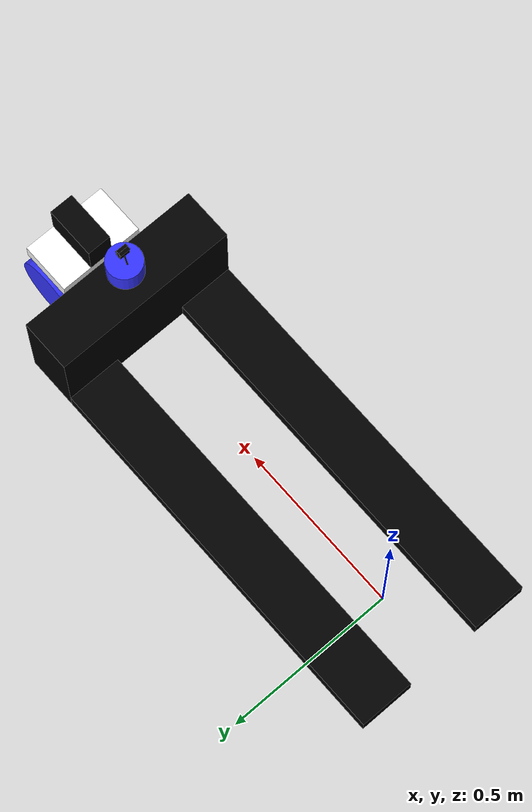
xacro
<?xml version="1.0"?>
<robot xmlns:xacro="http://www.ros.org/wiki/xacro"  name="robot">

    <xacro:include filename="robot_core_humble.xacro" />

    <xacro:include filename="ros2_control.xacro" />

    <xacro:include filename="lidar.xacro"/>

    <xacro:include filename="camera.xacro" />

</robot>

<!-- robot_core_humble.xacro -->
<robot xmlns:xacro="http://www.ros.org/wiki/xacro">

  <xacro:include filename="inertial_macros.xacro"/>

  <!-- Materials -->
  <material name="white">
    <color rgba="1 1 1 1" />
  </material>
  <material name="orange">
    <color rgba="1 0.3 0.1 1"/>
  </material>
  <material name="blue">
    <color rgba="0.2 0.2 1 1"/>
  </material>
  <material name="black">
    <color rgba="0 0 0 1"/>
  </material>

  <!-- Base Link -->
  <link name="base_link"/>

  <!-- Base Footprint -->
  <joint name="base_footprint_joint" type="fixed">
    <parent link="base_link"/>
    <child link="base_footprint"/>
    <origin xyz="0 0 0" rpy="0 0 0"/>
  </joint>
  <link name="base_footprint"/>

  <!-- Base Plate -->
  <joint name="base_plate_joint" type="fixed">
    <parent link="base_link"/>
    <child link="base_plate"/>
    <origin xyz="1.17 0 0.25"/>
  </joint>
  <link name="base_plate">
    <visual>
      <origin xyz="0 0 0"/>
      <geometry>
        <box size="0.15 0.25 0.05"/>
      </geometry>
      <material name="white"/>
    </visual>
    <collision>
      <origin xyz="0 0 0"/>
      <geometry>
        <box size="0.15 0.25 0.05"/>
      </geometry>
    </collision>
    <xacro:inertial_box mass="2" x="0.15" y="0.25" z="0.05">
      <origin xyz="0 0 0" rpy="0 0 0"/>
    </xacro:inertial_box>
  </link>

  <!-- Steering Shaft -->
  <joint name="steering_shaft_joint" type="revolute">
    <parent link="base_plate"/>
    <child link="steering_shaft"/>
    <origin xyz="0 0 -0.025" rpy="0 0 0"/>
    <axis xyz="0 0 1"/>
    <dynamics damping="1.1" friction="0.5"/>
    <limit lower="${-pi/2}" upper="${pi/2}" effort="1000" velocity="${2*pi}"/>
  </joint>
  <link name="steering_shaft">
    <visual>
      <origin xyz="0 0 -0.0625"/>
      <geometry>
        <cylinder radius="0.025" length="0.125"/>
      </geometry>
      <material name="blue"/>
    </visual>
    <xacro:inertial_cylinder mass="0.5" length="0.125" radius="0.025">
      <origin xyz="0 0 0" rpy="0 0 0"/>
    </xacro:inertial_cylinder>
  </link>

  <!-- Steering Wheel Right -->
  <joint name="steering_wheel_right_joint" type="continuous">
    <parent link="steering_shaft"/>
    <child link="steering_wheel_right"/>
    <!-- Switched X origin and flipped Y origin -->
    <origin xyz="0 -0.11 -0.125" rpy="${pi/2} 0 0"/>
    <axis xyz="0 0 -1"/>
    <dynamics damping="0.01" friction="0.01"/>
  </joint>
  <link name="steering_wheel_right">
    <visual>
      <geometry>
        <cylinder radius="0.1" length="0.04"/>
      </geometry>
      <material name="blue"/>
    </visual>
    <collision>
      <geometry>
        <sphere radius="0.1"/>
      </geometry>
    </collision>
    <xacro:inertial_cylinder mass="1.5" length="0.04" radius="0.1">
      <origin xyz="0 0 0" rpy="0 0 0"/>
    </xacro:inertial_cylinder>
  </link>

  <!-- Steering Wheel Left -->
  <joint name="steering_wheel_left_joint" type="continuous">
    <parent link="steering_shaft"/>
    <child link="steering_wheel_left"/>
    <!-- Switched X origin and flipped Y origin -->
    <origin xyz="0 0.11 -0.125" rpy="${pi/2} 0 0"/>
    <axis xyz="0 0 -1"/>
    <dynamics damping="0.01" friction="0.01"/>
  </joint>
  <link name="steering_wheel_left">
    <visual>
      <geometry>
        <cylinder radius="0.1" length="0.04"/>
      </geometry>
      <material name="blue"/>
    </visual>
    <collision>
      <geometry>
        <sphere radius="0.1"/>
      </geometry>
    </collision>
    <xacro:inertial_cylinder mass="1.5" length="0.04" radius="0.1">
      <origin xyz="0 0 0" rpy="0 0 0"/>
    </xacro:inertial_cylinder>
  </link>

  <!-- Linear Actuator -->
  <joint name="linear_actuator_joint" type="fixed">
    <parent link="base_plate"/>
    <child link="linear_actuator"/>
    <origin xyz="0 0 0.025"/>
    <axis xyz="0 0 1"/>
  </joint>
  <link name="linear_actuator">
    <visual>
      <origin xyz="0 0 0.05"/>
      <geometry>
        <box size="0.15 0.07 0.1"/>
      </geometry>
      <material name="black"/>
    </visual>
    <collision>
      <origin xyz="0 0 0.05"/>
      <geometry>
        <box size="0.15 0.07 0.1"/>
      </geometry>
    </collision>
    <xacro:inertial_box mass="1" x="0.15" y="0.07" z="0.1">
      <origin xyz="0 0 0.05" rpy="0 0 0"/>
    </xacro:inertial_box>
  </link>

  <!-- Frame Box -->
  <joint name="frame_box_joint" type="fixed">
    <parent link="linear_actuator"/>
    <child link="frame_box"/>
    <!-- Switched X origin and flipped Y origin -->
    <origin xyz="-0.18 0 -0.085" rpy="0 0 0"/>
    <dynamics damping="1.0" friction="1.0"/>
  </joint>
  <link name="frame_box">
    <visual>
      <geometry>
        <box size="0.15 0.54 0.3"/>
      </geometry>
      <material name="black"/>
    </visual>
    <collision>
      <geometry>
        <box size="0.15 0.54 0.3"/>
      </geometry>
    </collision>
    <xacro:inertial_box mass="20" x="0.15" y="0.54" z="0.3">
      <origin xyz="0 0 0" rpy="0 0 0"/>
    </xacro:inertial_box>
  </link>

  <!-- Left Fork -->
  <joint name="left_fork_joint" type="fixed">
    <parent link="frame_box"/>
    <child link="left_fork"/>
    <!-- Switched X origin and flipped Y origin -->
    <origin xyz="-0.075 0.19 -0.125" rpy="0 0 0"/>
  </joint>
  <link name="left_fork">
    <visual>
      <!-- Switched X origin -->
      <origin xyz="-0.57 0 0"/>
      <geometry>
        <box size="1.14 0.16 0.05"/>
      </geometry>
      <material name="black"/>
    </visual>
    <collision>
      <!-- Switched X origin -->
      <origin xyz="-0.57 0 0"/>
      <geometry>
        <box size="1.14 0.16 0.05"/>
      </geometry>
    </collision>
    <xacro:inertial_box mass="10" x="1.14" y="0.16" z="0.05">
      <origin xyz="-0.57 0 0" rpy="0 0 0"/>
    </xacro:inertial_box>
  </link>

  <!-- Right Fork -->
  <joint name="right_fork_joint" type="fixed">
    <parent link="frame_box"/>
    <child link="right_fork"/>
    <!-- Switched X origin and flipped Y origin -->
    <origin xyz="-0.075 -0.19 -0.125" rpy="0 0 0"/>
  </joint>
  <link name="right_fork">
    <visual>
      <!-- Switched X origin -->
      <origin xyz="-0.57 0 0"/>
      <geometry>
        <box size="1.14 0.16 0.05"/>
      </geometry>
      <material name="black"/>
    </visual>
    <collision>
      <!-- Switched X origin -->
      <origin xyz="-0.57 0 0"/>
      <geometry>
        <box size="1.14 0.16 0.05"/>
      </geometry>
    </collision>
    <xacro:inertial_box mass="10" x="1.14" y="0.16" z="0.05">
      <origin xyz="-0.57 0 0" rpy="0 0 0"/>
    </xacro:inertial_box>
  </link>

  <!-- Left Fork Actuator -->

    <!-- right Fork Actuator -->

  <!-- Fork Wheel Left -->
  <joint name="fork_wheel_left_joint" type="continuous">
    <parent link="base_plate"/>
    <child link="fork_wheel_left"/>
    <!-- Switched X origin and flipped Y origin -->
    <origin xyz="-1.17 0.19 -0.2175" rpy="${pi/2} 0 0"/>
    <axis xyz="0 0 1"/>
    <dynamics damping="0.1" friction="0.1"/>
  </joint>
  <link name="fork_wheel_left">
    <visual>
      <geometry>
        <cylinder radius="0.0325" length="0.07"/>
      </geometry>
      <material name="black"/>
    </visual>
    <collision>
      <geometry>
        <sphere radius="0.0325"/>
      </geometry>
    </collision>
    <xacro:inertial_cylinder mass="0.3" length="0.07" radius="0.0325">
      <origin xyz="0 0 0" rpy="0 0 0"/>
    </xacro:inertial_cylinder>
  </link>

  <!-- Fork Wheel Right -->
  <joint name="fork_wheel_right_joint" type="continuous">
    <parent link="base_plate"/>
    <child link="fork_wheel_right"/>
    <!-- Switched X origin and flipped Y origin -->
    <origin xyz="-1.17 -0.19 -0.2175" rpy="${pi/2} 0 0"/>
    <axis xyz="0 0 1"/>
    <dynamics damping="0.1" friction="0.1"/>
  </joint>
  <link name="fork_wheel_right">
    <visual>
      <geometry>
        <cylinder radius="0.0325" length="0.07"/>
      </geometry>
      <material name="black"/>
    </visual>
    <collision>
      <geometry>
        <sphere radius="0.0325"/>
      </geometry>
    </collision>
    <xacro:inertial_cylinder mass="0.3" length="0.07" radius="0.0325">
      <origin xyz="0 0 0" rpy="0 0 0"/>
    </xacro:inertial_cylinder>
  </link>

  <!-- Gazebo Material and Friction Parameters -->
  <gazebo reference="steering_wheel_right">
    <material>Gazebo/Blue</material>
    <mu1 value="0.9"/>
    <mu2 value="0.9"/>
  </gazebo>
  <gazebo reference="steering_wheel_left">
    <material>Gazebo/Red</material>
    <mu1 value="0.9"/>
    <mu2 value="0.9"/>
  </gazebo>
  <gazebo reference="fork_wheel_left">
    <material>Gazebo/Red</material>
    <mu1 value="0.9"/>
    <mu2 value="1.0"/>
  </gazebo>
  <gazebo reference="fork_wheel_right">
    <material>Gazebo/Blue</material>
    <mu1 value="0.9"/>
    <mu2 value="1.0"/>
  </gazebo>
  <gazebo reference="frame_box">
    <material>Gazebo/Red</material>
  </gazebo>

  <gazebo>

    <plugin name="gazebo_ros_joint_state_publisher"
        filename="libgazebo_ros_joint_state_publisher.so">
        <update_rate>100</update_rate>
        <joint_name>steering_wheel_right_joint</joint_name>
        <joint_name>steering_wheel_left_joint</joint_name>
        <joint_name>steering_shaft_joint</joint_name>
        <joint_name>fork_wheel_right_joint</joint_name>
        <joint_name>fork_wheel_left_joint</joint_name>
        <joint_name>linear_actuator_joint</joint_name>
    </plugin>
  </gazebo>
  <!-- Left Wheel Transmission -->
  <transmission name="steering_wheel_left_transmission">
    <type>transmission_interface/SimpleTransmission</type>
    <joint name="steering_wheel_left_joint"/>
    <actuator name="steering_wheel_left_motor">
        <mechanicalReduction>1</mechanicalReduction>
    </actuator>
  </transmission>

  <!-- Right Wheel Transmission -->
  <transmission name="steering_wheel_right_transmission">
    <type>transmission_interface/SimpleTransmission</type>
    <joint name="steering_wheel_right_joint"/>
    <actuator name="steering_wheel_right_motor">
        <mechanicalReduction>1</mechanicalReduction>
    </actuator>
  </transmission>

  <!-- Linear Actuator Transmission -->
  <transmission name="linear_actuator_transmission">
    <type>transmission_interface/SimpleTransmission</type>
    <joint name="linear_actuator_joint"/>
    <actuator name="linear_actuator_motor">
        <mechanicalReduction>1</mechanicalReduction>
    </actuator>
  </transmission>

</robot>

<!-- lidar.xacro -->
<robot xmlns:xacro="http://www.ros.org/wiki/xacro">

    <joint name="lidar_joint" type="fixed">
        <parent link="frame_box"/>
        <child link="lidar"/>
        <origin xyz="0 0 0.25"/>
    </joint>

    <link name="lidar">
    <visual>
            <origin xyz="0 0 0"/>
            <geometry>
                <cylinder radius="0.05" length="0.07"/>
            </geometry>
            <material name="blue"/>
        </visual>
        <xacro:inertial_cylinder mass="0.3" length="0.07" radius="0.05">
            <origin xyz="0 0 0" rpy="0 0 0"/>
        </xacro:inertial_cylinder>
    </link>

<!-- Add a simulated LiDAR sensor -->
  <gazebo reference="lidar">
    <material>Gazebo/Blue</material>
    <sensor name="lidar" type="ray">
    <visualize>false</visualize>
      <update_rate>50</update_rate>
      <ray>
        <scan>
          <horizontal>
            <samples>360</samples>
            <min_angle>-3.1415</min_angle>
            <max_angle>3.1415</max_angle>
          </horizontal>
          <vertical>
            <samples>16</samples>
            <min_angle>-0.261799</min_angle>
            <max_angle>0.261799</max_angle>
          </vertical>
        </scan>
        <range>
          <min>0.1</min>
          <max>100.0</max>
        </range>
      </ray>
      <plugin name="gazebo_ros" filename="libgazebo_ros_ray_sensor.so">

          <!-- Directly publish to the desired topic -->
          <ros>
            <argument>~/out:=CloudScan</argument>
          </ros>
          <output_type>sensor_msgs/PointCloud2</output_type>
          <frame_name>lidar</frame_name>

      </plugin>
    </sensor>
  </gazebo>

</robot>

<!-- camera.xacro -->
<robot xmlns:xacro="http://www.ros.org/wiki/xacro" >

    <joint name="camera_joint_forks" type="fixed">
        <parent link="lidar"/>
        <child link="camera_link_forks"/>
        <origin xyz="0 0 0.1" rpy="0 0.45 ${pi}"/>
    </joint>

    <joint name="camera_joint_steering" type="fixed">
        <parent link="lidar"/>
        <child link="camera_link_steering"/>
        <origin xyz="0 0 0.1" rpy="0 0.18 0"/>
    </joint>

    <link name="camera_link_forks">
        <visual>
            <geometry>
                <box size="0.010 0.03 0.03"/>
            </geometry>
            <material name="black"/>
        </visual>
        <visual>
            <origin xyz="0 0 -0.05"/>
            <geometry>
                <cylinder radius="0.002" length="0.1"/>
            </geometry>
            <material name="black"/>
        </visual>
    </link>

    <link name="camera_link_steering">
        <visual>
            <geometry>
                <box size="0.010 0.03 0.03"/>
            </geometry>
            <material name="black"/>
        </visual>
        <visual>
            <origin xyz="0 0 -0.05"/>
            <geometry>
                <cylinder radius="0.002" length="0.1"/>
            </geometry>
            <material name="black"/>
        </visual>
    </link>

    <joint name="camera_optical_joint_forks" type="fixed">
        <parent link="camera_link_forks"/>
        <child link="camera_link_optical_forks"/>
        <origin xyz="0 0 0" rpy="${-pi/2} 0 ${-pi/2}"/>
    </joint>

    <link name="camera_link_optical_forks"></link>

    <joint name="camera_optical_joint_steering" type="fixed">
        <parent link="camera_link_steering"/>
        <child link="camera_link_optical_steering"/>
        <origin xyz="0 0 0" rpy="${-pi/2} 0 ${-pi/2}"/>
    </joint>

    <link name="camera_link_optical_steering"></link>

    <gazebo reference="camera_link_forks">
        <material>Gazebo/Black</material>

        <sensor name="camera_forks" type="camera">
            <pose> 0 0 0 0 0 0 </pose>
            <visualize>true</visualize>
            <update_rate>60</update_rate>
            <camera>
                <horizontal_fov>1.047</horizontal_fov>
                <image>
                    <format>R8G8B8</format>
                    <width>1280</width>
                    <height>720</height>
                </image>
                <clip>
                    <near>0.05</near>
                    <far>60.0</far>
                </clip>
            </camera>
            <plugin name="camera_controller_fork" filename="libgazebo_ros_camera.so">
                <frame_name>camera_link_optical_forks</frame_name>

            </plugin>
        </sensor>
    </gazebo>

    <gazebo reference="camera_link_steering">
        <material>Gazebo/Black</material>

        <sensor name="camera_steering" type="camera">
            <pose> 0 0 0 0 0 0 </pose>
            <visualize>true</visualize>
            <update_rate>60</update_rate>
            <camera>
                <horizontal_fov>1.047</horizontal_fov>
                <image>
                    <format>R8G8B8</format>
                    <width>1280</width>
                    <height>720</height>
                </image>
                <clip>
                    <near>0.05</near>
                    <far>60.0</far>
                </clip>
            </camera>
            <plugin name="camera_controller_steering" filename="libgazebo_ros_camera.so">
                <frame_name>camera_link_optical_steering</frame_name>

            </plugin>
        </sensor>
    </gazebo>

</robot>
